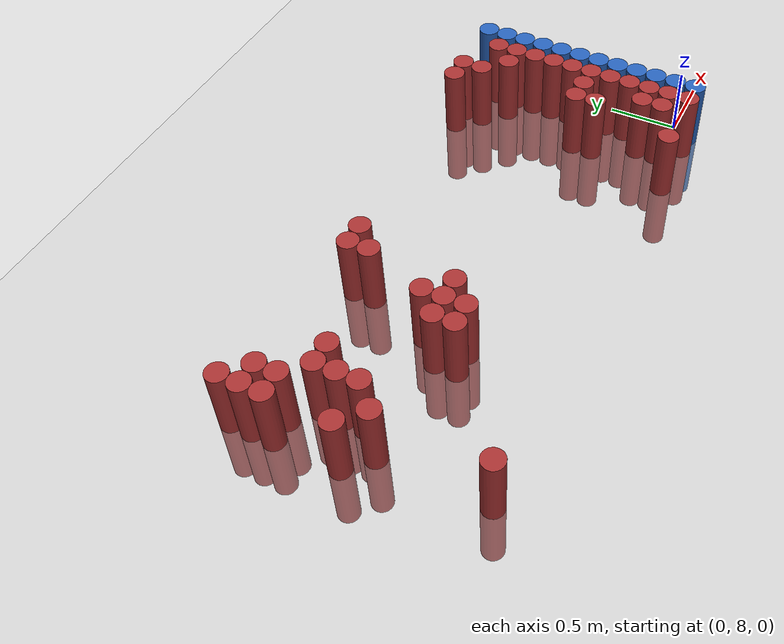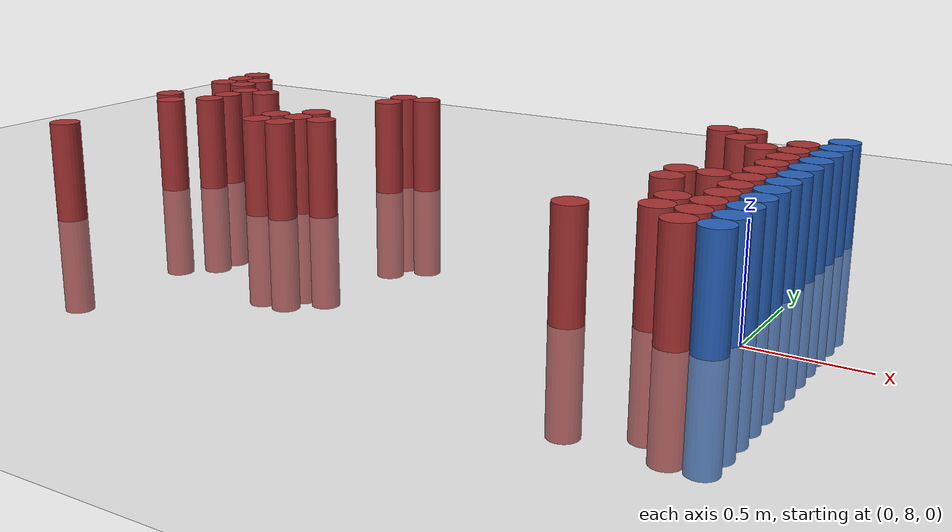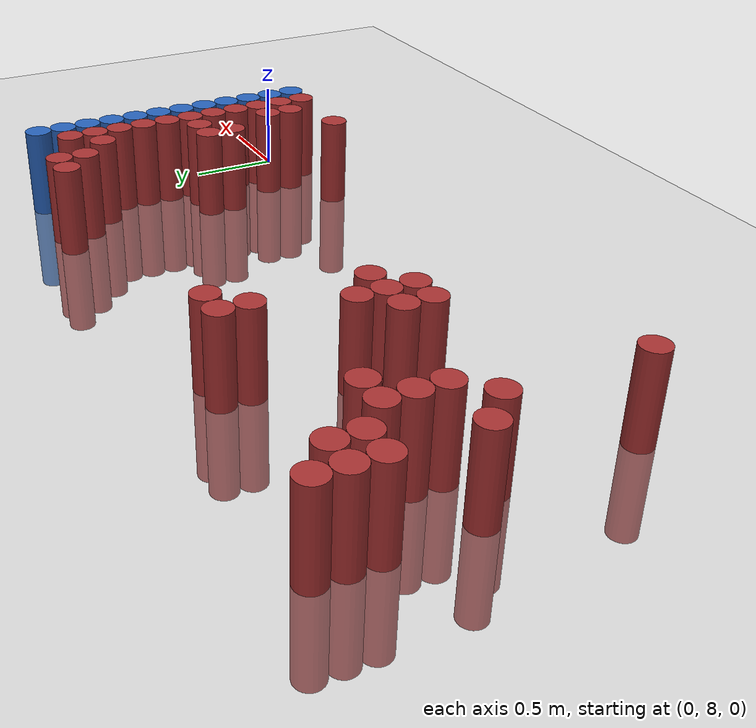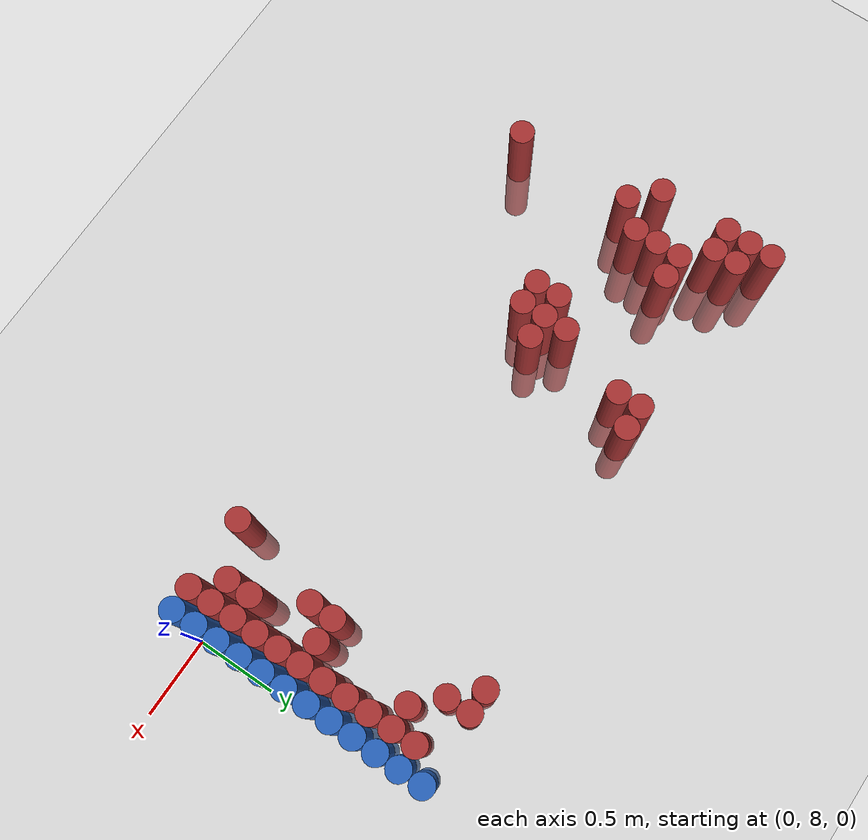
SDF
<sdf version="1.6">
 <world name="default">
  <model name="ground_plane">
   <static>1</static>
   <link name="link">
    <collision name="collision">
     <geometry><plane><normal>0 0 1</normal><size>100 100</size></plane></geometry>
     <surface><friction><ode><mu>100</mu><mu2>50</mu2></ode></friction></surface>
    </collision>
    <visual name="visual">
     <cast_shadows>0</cast_shadows>
     <geometry><plane><normal>0 0 1</normal><size>100 100</size></plane></geometry>
     <material>
      <script><uri>file://media/materials/scripts/gazebo.material</uri><name>Gazebo/Grey</name></script>
     </material>
    </visual>
   </link>
  </model>
  <model name="unit_cylinder_156">
   <static>1</static>
   <pose>-3.675000 8.775000 0.000000 0.000000 0.000000 0.000000</pose>
   <link name="link">
    <inertial>
     <mass>1</mass>
     <inertia><ixx>0.145833</ixx><ixy>0</ixy><ixz>0</ixz><iyy>0.145833</iyy><iyz>0</iyz><izz>0.125</izz></inertia>
    </inertial>
    <collision name="collision">
     <geometry><cylinder><radius>0.075000</radius><length>1</length></cylinder></geometry>
    </collision>
    <visual name="visual">
     <geometry><cylinder><radius>0.075000</radius><length>1</length></cylinder></geometry>
     <material>
      <ambient>0.648000 0.192000 0.192000 1</ambient>
      <diffuse>0.648000 0.192000 0.192000 1</diffuse>
     </material>
     <material>
      <script><name>Gazebo/Grey</name><uri>file://media/materials/scripts/gazebo.material</uri></script>
     </material>
    </visual>
   </link>
  </model>
  <model name="unit_cylinder_157">
   <static>1</static>
   <pose>-3.675000 9.225000 0.000000 0.000000 0.000000 0.000000</pose>
   <link name="link">
    <inertial>
     <mass>1</mass>
     <inertia><ixx>0.145833</ixx><ixy>0</ixy><ixz>0</ixz><iyy>0.145833</iyy><iyz>0</iyz><izz>0.125</izz></inertia>
    </inertial>
    <collision name="collision">
     <geometry><cylinder><radius>0.075000</radius><length>1</length></cylinder></geometry>
    </collision>
    <visual name="visual">
     <geometry><cylinder><radius>0.075000</radius><length>1</length></cylinder></geometry>
     <material>
      <ambient>0.648000 0.192000 0.192000 1</ambient>
      <diffuse>0.648000 0.192000 0.192000 1</diffuse>
     </material>
     <material>
      <script><name>Gazebo/Grey</name><uri>file://media/materials/scripts/gazebo.material</uri></script>
     </material>
    </visual>
   </link>
  </model>
  <model name="unit_cylinder_158">
   <static>1</static>
   <pose>-3.675000 9.375000 0.000000 0.000000 0.000000 0.000000</pose>
   <link name="link">
    <inertial>
     <mass>1</mass>
     <inertia><ixx>0.145833</ixx><ixy>0</ixy><ixz>0</ixz><iyy>0.145833</iyy><iyz>0</iyz><izz>0.125</izz></inertia>
    </inertial>
    <collision name="collision">
     <geometry><cylinder><radius>0.075000</radius><length>1</length></cylinder></geometry>
    </collision>
    <visual name="visual">
     <geometry><cylinder><radius>0.075000</radius><length>1</length></cylinder></geometry>
     <material>
      <ambient>0.648000 0.192000 0.192000 1</ambient>
      <diffuse>0.648000 0.192000 0.192000 1</diffuse>
     </material>
     <material>
      <script><name>Gazebo/Grey</name><uri>file://media/materials/scripts/gazebo.material</uri></script>
     </material>
    </visual>
   </link>
  </model>
  <model name="unit_cylinder_159">
   <static>1</static>
   <pose>-3.675000 9.525000 0.000000 0.000000 0.000000 0.000000</pose>
   <link name="link">
    <inertial>
     <mass>1</mass>
     <inertia><ixx>0.145833</ixx><ixy>0</ixy><ixz>0</ixz><iyy>0.145833</iyy><iyz>0</iyz><izz>0.125</izz></inertia>
    </inertial>
    <collision name="collision">
     <geometry><cylinder><radius>0.075000</radius><length>1</length></cylinder></geometry>
    </collision>
    <visual name="visual">
     <geometry><cylinder><radius>0.075000</radius><length>1</length></cylinder></geometry>
     <material>
      <ambient>0.648000 0.192000 0.192000 1</ambient>
      <diffuse>0.648000 0.192000 0.192000 1</diffuse>
     </material>
     <material>
      <script><name>Gazebo/Grey</name><uri>file://media/materials/scripts/gazebo.material</uri></script>
     </material>
    </visual>
   </link>
  </model>
  <model name="unit_cylinder_161">
   <static>1</static>
   <pose>-3.525000 7.875000 0.000000 0.000000 0.000000 0.000000</pose>
   <link name="link">
    <inertial>
     <mass>1</mass>
     <inertia><ixx>0.145833</ixx><ixy>0</ixy><ixz>0</ixz><iyy>0.145833</iyy><iyz>0</iyz><izz>0.125</izz></inertia>
    </inertial>
    <collision name="collision">
     <geometry><cylinder><radius>0.075000</radius><length>1</length></cylinder></geometry>
    </collision>
    <visual name="visual">
     <geometry><cylinder><radius>0.075000</radius><length>1</length></cylinder></geometry>
     <material>
      <ambient>0.648000 0.192000 0.192000 1</ambient>
      <diffuse>0.648000 0.192000 0.192000 1</diffuse>
     </material>
     <material>
      <script><name>Gazebo/Grey</name><uri>file://media/materials/scripts/gazebo.material</uri></script>
     </material>
    </visual>
   </link>
  </model>
  <model name="unit_cylinder_162">
   <static>1</static>
   <pose>-3.525000 8.625000 0.000000 0.000000 0.000000 0.000000</pose>
   <link name="link">
    <inertial>
     <mass>1</mass>
     <inertia><ixx>0.145833</ixx><ixy>0</ixy><ixz>0</ixz><iyy>0.145833</iyy><iyz>0</iyz><izz>0.125</izz></inertia>
    </inertial>
    <collision name="collision">
     <geometry><cylinder><radius>0.075000</radius><length>1</length></cylinder></geometry>
    </collision>
    <visual name="visual">
     <geometry><cylinder><radius>0.075000</radius><length>1</length></cylinder></geometry>
     <material>
      <ambient>0.648000 0.192000 0.192000 1</ambient>
      <diffuse>0.648000 0.192000 0.192000 1</diffuse>
     </material>
     <material>
      <script><name>Gazebo/Grey</name><uri>file://media/materials/scripts/gazebo.material</uri></script>
     </material>
    </visual>
   </link>
  </model>
  <model name="unit_cylinder_163">
   <static>1</static>
   <pose>-3.525000 9.225000 0.000000 0.000000 0.000000 0.000000</pose>
   <link name="link">
    <inertial>
     <mass>1</mass>
     <inertia><ixx>0.145833</ixx><ixy>0</ixy><ixz>0</ixz><iyy>0.145833</iyy><iyz>0</iyz><izz>0.125</izz></inertia>
    </inertial>
    <collision name="collision">
     <geometry><cylinder><radius>0.075000</radius><length>1</length></cylinder></geometry>
    </collision>
    <visual name="visual">
     <geometry><cylinder><radius>0.075000</radius><length>1</length></cylinder></geometry>
     <material>
      <ambient>0.648000 0.192000 0.192000 1</ambient>
      <diffuse>0.648000 0.192000 0.192000 1</diffuse>
     </material>
     <material>
      <script><name>Gazebo/Grey</name><uri>file://media/materials/scripts/gazebo.material</uri></script>
     </material>
    </visual>
   </link>
  </model>
  <model name="unit_cylinder_164">
   <static>1</static>
   <pose>-3.525000 9.375000 0.000000 0.000000 0.000000 0.000000</pose>
   <link name="link">
    <inertial>
     <mass>1</mass>
     <inertia><ixx>0.145833</ixx><ixy>0</ixy><ixz>0</ixz><iyy>0.145833</iyy><iyz>0</iyz><izz>0.125</izz></inertia>
    </inertial>
    <collision name="collision">
     <geometry><cylinder><radius>0.075000</radius><length>1</length></cylinder></geometry>
    </collision>
    <visual name="visual">
     <geometry><cylinder><radius>0.075000</radius><length>1</length></cylinder></geometry>
     <material>
      <ambient>0.648000 0.192000 0.192000 1</ambient>
      <diffuse>0.648000 0.192000 0.192000 1</diffuse>
     </material>
     <material>
      <script><name>Gazebo/Grey</name><uri>file://media/materials/scripts/gazebo.material</uri></script>
     </material>
    </visual>
   </link>
  </model>
  <model name="unit_cylinder_166">
   <static>1</static>
   <pose>-3.375000 8.775000 0.000000 0.000000 0.000000 0.000000</pose>
   <link name="link">
    <inertial>
     <mass>1</mass>
     <inertia><ixx>0.145833</ixx><ixy>0</ixy><ixz>0</ixz><iyy>0.145833</iyy><iyz>0</iyz><izz>0.125</izz></inertia>
    </inertial>
    <collision name="collision">
     <geometry><cylinder><radius>0.075000</radius><length>1</length></cylinder></geometry>
    </collision>
    <visual name="visual">
     <geometry><cylinder><radius>0.075000</radius><length>1</length></cylinder></geometry>
     <material>
      <ambient>0.648000 0.192000 0.192000 1</ambient>
      <diffuse>0.648000 0.192000 0.192000 1</diffuse>
     </material>
     <material>
      <script><name>Gazebo/Grey</name><uri>file://media/materials/scripts/gazebo.material</uri></script>
     </material>
    </visual>
   </link>
  </model>
  <model name="unit_cylinder_167">
   <static>1</static>
   <pose>-3.375000 8.925000 0.000000 0.000000 0.000000 0.000000</pose>
   <link name="link">
    <inertial>
     <mass>1</mass>
     <inertia><ixx>0.145833</ixx><ixy>0</ixy><ixz>0</ixz><iyy>0.145833</iyy><iyz>0</iyz><izz>0.125</izz></inertia>
    </inertial>
    <collision name="collision">
     <geometry><cylinder><radius>0.075000</radius><length>1</length></cylinder></geometry>
    </collision>
    <visual name="visual">
     <geometry><cylinder><radius>0.075000</radius><length>1</length></cylinder></geometry>
     <material>
      <ambient>0.648000 0.192000 0.192000 1</ambient>
      <diffuse>0.648000 0.192000 0.192000 1</diffuse>
     </material>
     <material>
      <script><name>Gazebo/Grey</name><uri>file://media/materials/scripts/gazebo.material</uri></script>
     </material>
    </visual>
   </link>
  </model>
  <model name="unit_cylinder_168">
   <static>1</static>
   <pose>-3.375000 9.075000 0.000000 0.000000 0.000000 0.000000</pose>
   <link name="link">
    <inertial>
     <mass>1</mass>
     <inertia><ixx>0.145833</ixx><ixy>0</ixy><ixz>0</ixz><iyy>0.145833</iyy><iyz>0</iyz><izz>0.125</izz></inertia>
    </inertial>
    <collision name="collision">
     <geometry><cylinder><radius>0.075000</radius><length>1</length></cylinder></geometry>
    </collision>
    <visual name="visual">
     <geometry><cylinder><radius>0.075000</radius><length>1</length></cylinder></geometry>
     <material>
      <ambient>0.648000 0.192000 0.192000 1</ambient>
      <diffuse>0.648000 0.192000 0.192000 1</diffuse>
     </material>
     <material>
      <script><name>Gazebo/Grey</name><uri>file://media/materials/scripts/gazebo.material</uri></script>
     </material>
    </visual>
   </link>
  </model>
  <model name="unit_cylinder_171">
   <static>1</static>
   <pose>-3.225000 9.075000 0.000000 0.000000 0.000000 0.000000</pose>
   <link name="link">
    <inertial>
     <mass>1</mass>
     <inertia><ixx>0.145833</ixx><ixy>0</ixy><ixz>0</ixz><iyy>0.145833</iyy><iyz>0</iyz><izz>0.125</izz></inertia>
    </inertial>
    <collision name="collision">
     <geometry><cylinder><radius>0.075000</radius><length>1</length></cylinder></geometry>
    </collision>
    <visual name="visual">
     <geometry><cylinder><radius>0.075000</radius><length>1</length></cylinder></geometry>
     <material>
      <ambient>0.648000 0.192000 0.192000 1</ambient>
      <diffuse>0.648000 0.192000 0.192000 1</diffuse>
     </material>
     <material>
      <script><name>Gazebo/Grey</name><uri>file://media/materials/scripts/gazebo.material</uri></script>
     </material>
    </visual>
   </link>
  </model>
  <model name="unit_cylinder_174">
   <static>1</static>
   <pose>-2.775000 8.475000 0.000000 0.000000 0.000000 0.000000</pose>
   <link name="link">
    <inertial>
     <mass>1</mass>
     <inertia><ixx>0.145833</ixx><ixy>0</ixy><ixz>0</ixz><iyy>0.145833</iyy><iyz>0</iyz><izz>0.125</izz></inertia>
    </inertial>
    <collision name="collision">
     <geometry><cylinder><radius>0.075000</radius><length>1</length></cylinder></geometry>
    </collision>
    <visual name="visual">
     <geometry><cylinder><radius>0.075000</radius><length>1</length></cylinder></geometry>
     <material>
      <ambient>0.648000 0.192000 0.192000 1</ambient>
      <diffuse>0.648000 0.192000 0.192000 1</diffuse>
     </material>
     <material>
      <script><name>Gazebo/Grey</name><uri>file://media/materials/scripts/gazebo.material</uri></script>
     </material>
    </visual>
   </link>
  </model>
  <model name="unit_cylinder_175">
   <static>1</static>
   <pose>-2.775000 8.625000 0.000000 0.000000 0.000000 0.000000</pose>
   <link name="link">
    <inertial>
     <mass>1</mass>
     <inertia><ixx>0.145833</ixx><ixy>0</ixy><ixz>0</ixz><iyy>0.145833</iyy><iyz>0</iyz><izz>0.125</izz></inertia>
    </inertial>
    <collision name="collision">
     <geometry><cylinder><radius>0.075000</radius><length>1</length></cylinder></geometry>
    </collision>
    <visual name="visual">
     <geometry><cylinder><radius>0.075000</radius><length>1</length></cylinder></geometry>
     <material>
      <ambient>0.648000 0.192000 0.192000 1</ambient>
      <diffuse>0.648000 0.192000 0.192000 1</diffuse>
     </material>
     <material>
      <script><name>Gazebo/Grey</name><uri>file://media/materials/scripts/gazebo.material</uri></script>
     </material>
    </visual>
   </link>
  </model>
  <model name="unit_cylinder_181">
   <static>1</static>
   <pose>-2.625000 8.475000 0.000000 0.000000 0.000000 0.000000</pose>
   <link name="link">
    <inertial>
     <mass>1</mass>
     <inertia><ixx>0.145833</ixx><ixy>0</ixy><ixz>0</ixz><iyy>0.145833</iyy><iyz>0</iyz><izz>0.125</izz></inertia>
    </inertial>
    <collision name="collision">
     <geometry><cylinder><radius>0.075000</radius><length>1</length></cylinder></geometry>
    </collision>
    <visual name="visual">
     <geometry><cylinder><radius>0.075000</radius><length>1</length></cylinder></geometry>
     <material>
      <ambient>0.648000 0.192000 0.192000 1</ambient>
      <diffuse>0.648000 0.192000 0.192000 1</diffuse>
     </material>
     <material>
      <script><name>Gazebo/Grey</name><uri>file://media/materials/scripts/gazebo.material</uri></script>
     </material>
    </visual>
   </link>
  </model>
  <model name="unit_cylinder_182">
   <static>1</static>
   <pose>-2.625000 8.625000 0.000000 0.000000 0.000000 0.000000</pose>
   <link name="link">
    <inertial>
     <mass>1</mass>
     <inertia><ixx>0.145833</ixx><ixy>0</ixy><ixz>0</ixz><iyy>0.145833</iyy><iyz>0</iyz><izz>0.125</izz></inertia>
    </inertial>
    <collision name="collision">
     <geometry><cylinder><radius>0.075000</radius><length>1</length></cylinder></geometry>
    </collision>
    <visual name="visual">
     <geometry><cylinder><radius>0.075000</radius><length>1</length></cylinder></geometry>
     <material>
      <ambient>0.648000 0.192000 0.192000 1</ambient>
      <diffuse>0.648000 0.192000 0.192000 1</diffuse>
     </material>
     <material>
      <script><name>Gazebo/Grey</name><uri>file://media/materials/scripts/gazebo.material</uri></script>
     </material>
    </visual>
   </link>
  </model>
  <model name="unit_cylinder_183">
   <static>1</static>
   <pose>-2.625000 8.775000 0.000000 0.000000 0.000000 0.000000</pose>
   <link name="link">
    <inertial>
     <mass>1</mass>
     <inertia><ixx>0.145833</ixx><ixy>0</ixy><ixz>0</ixz><iyy>0.145833</iyy><iyz>0</iyz><izz>0.125</izz></inertia>
    </inertial>
    <collision name="collision">
     <geometry><cylinder><radius>0.075000</radius><length>1</length></cylinder></geometry>
    </collision>
    <visual name="visual">
     <geometry><cylinder><radius>0.075000</radius><length>1</length></cylinder></geometry>
     <material>
      <ambient>0.648000 0.192000 0.192000 1</ambient>
      <diffuse>0.648000 0.192000 0.192000 1</diffuse>
     </material>
     <material>
      <script><name>Gazebo/Grey</name><uri>file://media/materials/scripts/gazebo.material</uri></script>
     </material>
    </visual>
   </link>
  </model>
  <model name="unit_cylinder_188">
   <static>1</static>
   <pose>-2.475000 8.625000 0.000000 0.000000 0.000000 0.000000</pose>
   <link name="link">
    <inertial>
     <mass>1</mass>
     <inertia><ixx>0.145833</ixx><ixy>0</ixy><ixz>0</ixz><iyy>0.145833</iyy><iyz>0</iyz><izz>0.125</izz></inertia>
    </inertial>
    <collision name="collision">
     <geometry><cylinder><radius>0.075000</radius><length>1</length></cylinder></geometry>
    </collision>
    <visual name="visual">
     <geometry><cylinder><radius>0.075000</radius><length>1</length></cylinder></geometry>
     <material>
      <ambient>0.648000 0.192000 0.192000 1</ambient>
      <diffuse>0.648000 0.192000 0.192000 1</diffuse>
     </material>
     <material>
      <script><name>Gazebo/Grey</name><uri>file://media/materials/scripts/gazebo.material</uri></script>
     </material>
    </visual>
   </link>
  </model>
  <model name="unit_cylinder_189">
   <static>1</static>
   <pose>-2.475000 9.225000 0.000000 0.000000 0.000000 0.000000</pose>
   <link name="link">
    <inertial>
     <mass>1</mass>
     <inertia><ixx>0.145833</ixx><ixy>0</ixy><ixz>0</ixz><iyy>0.145833</iyy><iyz>0</iyz><izz>0.125</izz></inertia>
    </inertial>
    <collision name="collision">
     <geometry><cylinder><radius>0.075000</radius><length>1</length></cylinder></geometry>
    </collision>
    <visual name="visual">
     <geometry><cylinder><radius>0.075000</radius><length>1</length></cylinder></geometry>
     <material>
      <ambient>0.648000 0.192000 0.192000 1</ambient>
      <diffuse>0.648000 0.192000 0.192000 1</diffuse>
     </material>
     <material>
      <script><name>Gazebo/Grey</name><uri>file://media/materials/scripts/gazebo.material</uri></script>
     </material>
    </visual>
   </link>
  </model>
  <model name="unit_cylinder_190">
   <static>1</static>
   <pose>-2.475000 9.375000 0.000000 0.000000 0.000000 0.000000</pose>
   <link name="link">
    <inertial>
     <mass>1</mass>
     <inertia><ixx>0.145833</ixx><ixy>0</ixy><ixz>0</ixz><iyy>0.145833</iyy><iyz>0</iyz><izz>0.125</izz></inertia>
    </inertial>
    <collision name="collision">
     <geometry><cylinder><radius>0.075000</radius><length>1</length></cylinder></geometry>
    </collision>
    <visual name="visual">
     <geometry><cylinder><radius>0.075000</radius><length>1</length></cylinder></geometry>
     <material>
      <ambient>0.648000 0.192000 0.192000 1</ambient>
      <diffuse>0.648000 0.192000 0.192000 1</diffuse>
     </material>
     <material>
      <script><name>Gazebo/Grey</name><uri>file://media/materials/scripts/gazebo.material</uri></script>
     </material>
    </visual>
   </link>
  </model>
  <model name="unit_cylinder_197">
   <static>1</static>
   <pose>-2.325000 9.375000 0.000000 0.000000 0.000000 0.000000</pose>
   <link name="link">
    <inertial>
     <mass>1</mass>
     <inertia><ixx>0.145833</ixx><ixy>0</ixy><ixz>0</ixz><iyy>0.145833</iyy><iyz>0</iyz><izz>0.125</izz></inertia>
    </inertial>
    <collision name="collision">
     <geometry><cylinder><radius>0.075000</radius><length>1</length></cylinder></geometry>
    </collision>
    <visual name="visual">
     <geometry><cylinder><radius>0.075000</radius><length>1</length></cylinder></geometry>
     <material>
      <ambient>0.648000 0.192000 0.192000 1</ambient>
      <diffuse>0.648000 0.192000 0.192000 1</diffuse>
     </material>
     <material>
      <script><name>Gazebo/Grey</name><uri>file://media/materials/scripts/gazebo.material</uri></script>
     </material>
    </visual>
   </link>
  </model>
  <model name="unit_cylinder_213">
   <static>1</static>
   <pose>-0.675000 7.875000 0.000000 0.000000 0.000000 0.000000</pose>
   <link name="link">
    <inertial>
     <mass>1</mass>
     <inertia><ixx>0.145833</ixx><ixy>0</ixy><ixz>0</ixz><iyy>0.145833</iyy><iyz>0</iyz><izz>0.125</izz></inertia>
    </inertial>
    <collision name="collision">
     <geometry><cylinder><radius>0.075000</radius><length>1</length></cylinder></geometry>
    </collision>
    <visual name="visual">
     <geometry><cylinder><radius>0.075000</radius><length>1</length></cylinder></geometry>
     <material>
      <ambient>0.648000 0.192000 0.192000 1</ambient>
      <diffuse>0.648000 0.192000 0.192000 1</diffuse>
     </material>
     <material>
      <script><name>Gazebo/Grey</name><uri>file://media/materials/scripts/gazebo.material</uri></script>
     </material>
    </visual>
   </link>
  </model>
  <model name="unit_cylinder_214">
   <static>1</static>
   <pose>-0.675000 9.525000 0.000000 0.000000 0.000000 0.000000</pose>
   <link name="link">
    <inertial>
     <mass>1</mass>
     <inertia><ixx>0.145833</ixx><ixy>0</ixy><ixz>0</ixz><iyy>0.145833</iyy><iyz>0</iyz><izz>0.125</izz></inertia>
    </inertial>
    <collision name="collision">
     <geometry><cylinder><radius>0.075000</radius><length>1</length></cylinder></geometry>
    </collision>
    <visual name="visual">
     <geometry><cylinder><radius>0.075000</radius><length>1</length></cylinder></geometry>
     <material>
      <ambient>0.648000 0.192000 0.192000 1</ambient>
      <diffuse>0.648000 0.192000 0.192000 1</diffuse>
     </material>
     <material>
      <script><name>Gazebo/Grey</name><uri>file://media/materials/scripts/gazebo.material</uri></script>
     </material>
    </visual>
   </link>
  </model>
  <model name="unit_cylinder_217">
   <static>1</static>
   <pose>-0.525000 8.475000 0.000000 0.000000 0.000000 0.000000</pose>
   <link name="link">
    <inertial>
     <mass>1</mass>
     <inertia><ixx>0.145833</ixx><ixy>0</ixy><ixz>0</ixz><iyy>0.145833</iyy><iyz>0</iyz><izz>0.125</izz></inertia>
    </inertial>
    <collision name="collision">
     <geometry><cylinder><radius>0.075000</radius><length>1</length></cylinder></geometry>
    </collision>
    <visual name="visual">
     <geometry><cylinder><radius>0.075000</radius><length>1</length></cylinder></geometry>
     <material>
      <ambient>0.648000 0.192000 0.192000 1</ambient>
      <diffuse>0.648000 0.192000 0.192000 1</diffuse>
     </material>
     <material>
      <script><name>Gazebo/Grey</name><uri>file://media/materials/scripts/gazebo.material</uri></script>
     </material>
    </visual>
   </link>
  </model>
  <model name="unit_cylinder_218">
   <static>1</static>
   <pose>-0.525000 8.625000 0.000000 0.000000 0.000000 0.000000</pose>
   <link name="link">
    <inertial>
     <mass>1</mass>
     <inertia><ixx>0.145833</ixx><ixy>0</ixy><ixz>0</ixz><iyy>0.145833</iyy><iyz>0</iyz><izz>0.125</izz></inertia>
    </inertial>
    <collision name="collision">
     <geometry><cylinder><radius>0.075000</radius><length>1</length></cylinder></geometry>
    </collision>
    <visual name="visual">
     <geometry><cylinder><radius>0.075000</radius><length>1</length></cylinder></geometry>
     <material>
      <ambient>0.648000 0.192000 0.192000 1</ambient>
      <diffuse>0.648000 0.192000 0.192000 1</diffuse>
     </material>
     <material>
      <script><name>Gazebo/Grey</name><uri>file://media/materials/scripts/gazebo.material</uri></script>
     </material>
    </visual>
   </link>
  </model>
  <model name="unit_cylinder_219">
   <static>1</static>
   <pose>-0.525000 9.375000 0.000000 0.000000 0.000000 0.000000</pose>
   <link name="link">
    <inertial>
     <mass>1</mass>
     <inertia><ixx>0.145833</ixx><ixy>0</ixy><ixz>0</ixz><iyy>0.145833</iyy><iyz>0</iyz><izz>0.125</izz></inertia>
    </inertial>
    <collision name="collision">
     <geometry><cylinder><radius>0.075000</radius><length>1</length></cylinder></geometry>
    </collision>
    <visual name="visual">
     <geometry><cylinder><radius>0.075000</radius><length>1</length></cylinder></geometry>
     <material>
      <ambient>0.648000 0.192000 0.192000 1</ambient>
      <diffuse>0.648000 0.192000 0.192000 1</diffuse>
     </material>
     <material>
      <script><name>Gazebo/Grey</name><uri>file://media/materials/scripts/gazebo.material</uri></script>
     </material>
    </visual>
   </link>
  </model>
  <model name="unit_cylinder_220">
   <static>1</static>
   <pose>-0.525000 9.525000 0.000000 0.000000 0.000000 0.000000</pose>
   <link name="link">
    <inertial>
     <mass>1</mass>
     <inertia><ixx>0.145833</ixx><ixy>0</ixy><ixz>0</ixz><iyy>0.145833</iyy><iyz>0</iyz><izz>0.125</izz></inertia>
    </inertial>
    <collision name="collision">
     <geometry><cylinder><radius>0.075000</radius><length>1</length></cylinder></geometry>
    </collision>
    <visual name="visual">
     <geometry><cylinder><radius>0.075000</radius><length>1</length></cylinder></geometry>
     <material>
      <ambient>0.648000 0.192000 0.192000 1</ambient>
      <diffuse>0.648000 0.192000 0.192000 1</diffuse>
     </material>
     <material>
      <script><name>Gazebo/Grey</name><uri>file://media/materials/scripts/gazebo.material</uri></script>
     </material>
    </visual>
   </link>
  </model>
  <model name="unit_cylinder_221">
   <static>1</static>
   <pose>-0.375000 8.025000 0.000000 0.000000 0.000000 0.000000</pose>
   <link name="link">
    <inertial>
     <mass>1</mass>
     <inertia><ixx>0.145833</ixx><ixy>0</ixy><ixz>0</ixz><iyy>0.145833</iyy><iyz>0</iyz><izz>0.125</izz></inertia>
    </inertial>
    <collision name="collision">
     <geometry><cylinder><radius>0.075000</radius><length>1</length></cylinder></geometry>
    </collision>
    <visual name="visual">
     <geometry><cylinder><radius>0.075000</radius><length>1</length></cylinder></geometry>
     <material>
      <ambient>0.648000 0.192000 0.192000 1</ambient>
      <diffuse>0.648000 0.192000 0.192000 1</diffuse>
     </material>
     <material>
      <script><name>Gazebo/Grey</name><uri>file://media/materials/scripts/gazebo.material</uri></script>
     </material>
    </visual>
   </link>
  </model>
  <model name="unit_cylinder_222">
   <static>1</static>
   <pose>-0.375000 8.175000 0.000000 0.000000 0.000000 0.000000</pose>
   <link name="link">
    <inertial>
     <mass>1</mass>
     <inertia><ixx>0.145833</ixx><ixy>0</ixy><ixz>0</ixz><iyy>0.145833</iyy><iyz>0</iyz><izz>0.125</izz></inertia>
    </inertial>
    <collision name="collision">
     <geometry><cylinder><radius>0.075000</radius><length>1</length></cylinder></geometry>
    </collision>
    <visual name="visual">
     <geometry><cylinder><radius>0.075000</radius><length>1</length></cylinder></geometry>
     <material>
      <ambient>0.648000 0.192000 0.192000 1</ambient>
      <diffuse>0.648000 0.192000 0.192000 1</diffuse>
     </material>
     <material>
      <script><name>Gazebo/Grey</name><uri>file://media/materials/scripts/gazebo.material</uri></script>
     </material>
    </visual>
   </link>
  </model>
  <model name="unit_cylinder_223">
   <static>1</static>
   <pose>-0.375000 8.625000 0.000000 0.000000 0.000000 0.000000</pose>
   <link name="link">
    <inertial>
     <mass>1</mass>
     <inertia><ixx>0.145833</ixx><ixy>0</ixy><ixz>0</ixz><iyy>0.145833</iyy><iyz>0</iyz><izz>0.125</izz></inertia>
    </inertial>
    <collision name="collision">
     <geometry><cylinder><radius>0.075000</radius><length>1</length></cylinder></geometry>
    </collision>
    <visual name="visual">
     <geometry><cylinder><radius>0.075000</radius><length>1</length></cylinder></geometry>
     <material>
      <ambient>0.648000 0.192000 0.192000 1</ambient>
      <diffuse>0.648000 0.192000 0.192000 1</diffuse>
     </material>
     <material>
      <script><name>Gazebo/Grey</name><uri>file://media/materials/scripts/gazebo.material</uri></script>
     </material>
    </visual>
   </link>
  </model>
  <model name="unit_cylinder_224">
   <static>1</static>
   <pose>-0.375000 9.225000 0.000000 0.000000 0.000000 0.000000</pose>
   <link name="link">
    <inertial>
     <mass>1</mass>
     <inertia><ixx>0.145833</ixx><ixy>0</ixy><ixz>0</ixz><iyy>0.145833</iyy><iyz>0</iyz><izz>0.125</izz></inertia>
    </inertial>
    <collision name="collision">
     <geometry><cylinder><radius>0.075000</radius><length>1</length></cylinder></geometry>
    </collision>
    <visual name="visual">
     <geometry><cylinder><radius>0.075000</radius><length>1</length></cylinder></geometry>
     <material>
      <ambient>0.648000 0.192000 0.192000 1</ambient>
      <diffuse>0.648000 0.192000 0.192000 1</diffuse>
     </material>
     <material>
      <script><name>Gazebo/Grey</name><uri>file://media/materials/scripts/gazebo.material</uri></script>
     </material>
    </visual>
   </link>
  </model>
  <model name="unit_cylinder_229">
   <static>1</static>
   <pose>-0.225000 7.875000 0.000000 0.000000 0.000000 0.000000</pose>
   <link name="link">
    <inertial>
     <mass>1</mass>
     <inertia><ixx>0.145833</ixx><ixy>0</ixy><ixz>0</ixz><iyy>0.145833</iyy><iyz>0</iyz><izz>0.125</izz></inertia>
    </inertial>
    <collision name="collision">
     <geometry><cylinder><radius>0.075000</radius><length>1</length></cylinder></geometry>
    </collision>
    <visual name="visual">
     <geometry><cylinder><radius>0.075000</radius><length>1</length></cylinder></geometry>
     <material>
      <ambient>0.648000 0.192000 0.192000 1</ambient>
      <diffuse>0.648000 0.192000 0.192000 1</diffuse>
     </material>
     <material>
      <script><name>Gazebo/Grey</name><uri>file://media/materials/scripts/gazebo.material</uri></script>
     </material>
    </visual>
   </link>
  </model>
  <model name="unit_cylinder_230">
   <static>1</static>
   <pose>-0.225000 8.025000 0.000000 0.000000 0.000000 0.000000</pose>
   <link name="link">
    <inertial>
     <mass>1</mass>
     <inertia><ixx>0.145833</ixx><ixy>0</ixy><ixz>0</ixz><iyy>0.145833</iyy><iyz>0</iyz><izz>0.125</izz></inertia>
    </inertial>
    <collision name="collision">
     <geometry><cylinder><radius>0.075000</radius><length>1</length></cylinder></geometry>
    </collision>
    <visual name="visual">
     <geometry><cylinder><radius>0.075000</radius><length>1</length></cylinder></geometry>
     <material>
      <ambient>0.648000 0.192000 0.192000 1</ambient>
      <diffuse>0.648000 0.192000 0.192000 1</diffuse>
     </material>
     <material>
      <script><name>Gazebo/Grey</name><uri>file://media/materials/scripts/gazebo.material</uri></script>
     </material>
    </visual>
   </link>
  </model>
  <model name="unit_cylinder_231">
   <static>1</static>
   <pose>-0.225000 8.175000 0.000000 0.000000 0.000000 0.000000</pose>
   <link name="link">
    <inertial>
     <mass>1</mass>
     <inertia><ixx>0.145833</ixx><ixy>0</ixy><ixz>0</ixz><iyy>0.145833</iyy><iyz>0</iyz><izz>0.125</izz></inertia>
    </inertial>
    <collision name="collision">
     <geometry><cylinder><radius>0.075000</radius><length>1</length></cylinder></geometry>
    </collision>
    <visual name="visual">
     <geometry><cylinder><radius>0.075000</radius><length>1</length></cylinder></geometry>
     <material>
      <ambient>0.648000 0.192000 0.192000 1</ambient>
      <diffuse>0.648000 0.192000 0.192000 1</diffuse>
     </material>
     <material>
      <script><name>Gazebo/Grey</name><uri>file://media/materials/scripts/gazebo.material</uri></script>
     </material>
    </visual>
   </link>
  </model>
  <model name="unit_cylinder_232">
   <static>1</static>
   <pose>-0.225000 8.325000 0.000000 0.000000 0.000000 0.000000</pose>
   <link name="link">
    <inertial>
     <mass>1</mass>
     <inertia><ixx>0.145833</ixx><ixy>0</ixy><ixz>0</ixz><iyy>0.145833</iyy><iyz>0</iyz><izz>0.125</izz></inertia>
    </inertial>
    <collision name="collision">
     <geometry><cylinder><radius>0.075000</radius><length>1</length></cylinder></geometry>
    </collision>
    <visual name="visual">
     <geometry><cylinder><radius>0.075000</radius><length>1</length></cylinder></geometry>
     <material>
      <ambient>0.648000 0.192000 0.192000 1</ambient>
      <diffuse>0.648000 0.192000 0.192000 1</diffuse>
     </material>
     <material>
      <script><name>Gazebo/Grey</name><uri>file://media/materials/scripts/gazebo.material</uri></script>
     </material>
    </visual>
   </link>
  </model>
  <model name="unit_cylinder_233">
   <static>1</static>
   <pose>-0.225000 8.475000 0.000000 0.000000 0.000000 0.000000</pose>
   <link name="link">
    <inertial>
     <mass>1</mass>
     <inertia><ixx>0.145833</ixx><ixy>0</ixy><ixz>0</ixz><iyy>0.145833</iyy><iyz>0</iyz><izz>0.125</izz></inertia>
    </inertial>
    <collision name="collision">
     <geometry><cylinder><radius>0.075000</radius><length>1</length></cylinder></geometry>
    </collision>
    <visual name="visual">
     <geometry><cylinder><radius>0.075000</radius><length>1</length></cylinder></geometry>
     <material>
      <ambient>0.648000 0.192000 0.192000 1</ambient>
      <diffuse>0.648000 0.192000 0.192000 1</diffuse>
     </material>
     <material>
      <script><name>Gazebo/Grey</name><uri>file://media/materials/scripts/gazebo.material</uri></script>
     </material>
    </visual>
   </link>
  </model>
  <model name="unit_cylinder_234">
   <static>1</static>
   <pose>-0.225000 8.625000 0.000000 0.000000 0.000000 0.000000</pose>
   <link name="link">
    <inertial>
     <mass>1</mass>
     <inertia><ixx>0.145833</ixx><ixy>0</ixy><ixz>0</ixz><iyy>0.145833</iyy><iyz>0</iyz><izz>0.125</izz></inertia>
    </inertial>
    <collision name="collision">
     <geometry><cylinder><radius>0.075000</radius><length>1</length></cylinder></geometry>
    </collision>
    <visual name="visual">
     <geometry><cylinder><radius>0.075000</radius><length>1</length></cylinder></geometry>
     <material>
      <ambient>0.648000 0.192000 0.192000 1</ambient>
      <diffuse>0.648000 0.192000 0.192000 1</diffuse>
     </material>
     <material>
      <script><name>Gazebo/Grey</name><uri>file://media/materials/scripts/gazebo.material</uri></script>
     </material>
    </visual>
   </link>
  </model>
  <model name="unit_cylinder_235">
   <static>1</static>
   <pose>-0.225000 8.775000 0.000000 0.000000 0.000000 0.000000</pose>
   <link name="link">
    <inertial>
     <mass>1</mass>
     <inertia><ixx>0.145833</ixx><ixy>0</ixy><ixz>0</ixz><iyy>0.145833</iyy><iyz>0</iyz><izz>0.125</izz></inertia>
    </inertial>
    <collision name="collision">
     <geometry><cylinder><radius>0.075000</radius><length>1</length></cylinder></geometry>
    </collision>
    <visual name="visual">
     <geometry><cylinder><radius>0.075000</radius><length>1</length></cylinder></geometry>
     <material>
      <ambient>0.648000 0.192000 0.192000 1</ambient>
      <diffuse>0.648000 0.192000 0.192000 1</diffuse>
     </material>
     <material>
      <script><name>Gazebo/Grey</name><uri>file://media/materials/scripts/gazebo.material</uri></script>
     </material>
    </visual>
   </link>
  </model>
  <model name="unit_cylinder_236">
   <static>1</static>
   <pose>-0.225000 8.925000 0.000000 0.000000 0.000000 0.000000</pose>
   <link name="link">
    <inertial>
     <mass>1</mass>
     <inertia><ixx>0.145833</ixx><ixy>0</ixy><ixz>0</ixz><iyy>0.145833</iyy><iyz>0</iyz><izz>0.125</izz></inertia>
    </inertial>
    <collision name="collision">
     <geometry><cylinder><radius>0.075000</radius><length>1</length></cylinder></geometry>
    </collision>
    <visual name="visual">
     <geometry><cylinder><radius>0.075000</radius><length>1</length></cylinder></geometry>
     <material>
      <ambient>0.648000 0.192000 0.192000 1</ambient>
      <diffuse>0.648000 0.192000 0.192000 1</diffuse>
     </material>
     <material>
      <script><name>Gazebo/Grey</name><uri>file://media/materials/scripts/gazebo.material</uri></script>
     </material>
    </visual>
   </link>
  </model>
  <model name="unit_cylinder_237">
   <static>1</static>
   <pose>-0.225000 9.075000 0.000000 0.000000 0.000000 0.000000</pose>
   <link name="link">
    <inertial>
     <mass>1</mass>
     <inertia><ixx>0.145833</ixx><ixy>0</ixy><ixz>0</ixz><iyy>0.145833</iyy><iyz>0</iyz><izz>0.125</izz></inertia>
    </inertial>
    <collision name="collision">
     <geometry><cylinder><radius>0.075000</radius><length>1</length></cylinder></geometry>
    </collision>
    <visual name="visual">
     <geometry><cylinder><radius>0.075000</radius><length>1</length></cylinder></geometry>
     <material>
      <ambient>0.648000 0.192000 0.192000 1</ambient>
      <diffuse>0.648000 0.192000 0.192000 1</diffuse>
     </material>
     <material>
      <script><name>Gazebo/Grey</name><uri>file://media/materials/scripts/gazebo.material</uri></script>
     </material>
    </visual>
   </link>
  </model>
  <model name="unit_cylinder_238">
   <static>1</static>
   <pose>-0.225000 9.225000 0.000000 0.000000 0.000000 0.000000</pose>
   <link name="link">
    <inertial>
     <mass>1</mass>
     <inertia><ixx>0.145833</ixx><ixy>0</ixy><ixz>0</ixz><iyy>0.145833</iyy><iyz>0</iyz><izz>0.125</izz></inertia>
    </inertial>
    <collision name="collision">
     <geometry><cylinder><radius>0.075000</radius><length>1</length></cylinder></geometry>
    </collision>
    <visual name="visual">
     <geometry><cylinder><radius>0.075000</radius><length>1</length></cylinder></geometry>
     <material>
      <ambient>0.648000 0.192000 0.192000 1</ambient>
      <diffuse>0.648000 0.192000 0.192000 1</diffuse>
     </material>
     <material>
      <script><name>Gazebo/Grey</name><uri>file://media/materials/scripts/gazebo.material</uri></script>
     </material>
    </visual>
   </link>
  </model>
  <model name="unit_cylinder_239">
   <static>1</static>
   <pose>-0.225000 9.375000 0.000000 0.000000 0.000000 0.000000</pose>
   <link name="link">
    <inertial>
     <mass>1</mass>
     <inertia><ixx>0.145833</ixx><ixy>0</ixy><ixz>0</ixz><iyy>0.145833</iyy><iyz>0</iyz><izz>0.125</izz></inertia>
    </inertial>
    <collision name="collision">
     <geometry><cylinder><radius>0.075000</radius><length>1</length></cylinder></geometry>
    </collision>
    <visual name="visual">
     <geometry><cylinder><radius>0.075000</radius><length>1</length></cylinder></geometry>
     <material>
      <ambient>0.648000 0.192000 0.192000 1</ambient>
      <diffuse>0.648000 0.192000 0.192000 1</diffuse>
     </material>
     <material>
      <script><name>Gazebo/Grey</name><uri>file://media/materials/scripts/gazebo.material</uri></script>
     </material>
    </visual>
   </link>
  </model>
  <model name="unit_cylinder_258">
   <static>1</static>
   <pose>-0.075000 7.875000 0.000000 0.000000 0.000000 0.000000</pose>
   <link name="link">
    <inertial>
     <mass>1</mass>
     <inertia><ixx>0.145833</ixx><ixy>0</ixy><ixz>0</ixz><iyy>0.145833</iyy><iyz>0</iyz><izz>0.125</izz></inertia>
    </inertial>
    <collision name="collision">
     <geometry><cylinder><radius>0.075000</radius><length>1</length></cylinder></geometry>
    </collision>
    <visual name="visual">
     <geometry><cylinder><radius>0.075000</radius><length>1</length></cylinder></geometry>
     <material>
      <ambient>0.152000 0.379000 0.720000 1</ambient>
      <diffuse>0.152000 0.379000 0.720000 1</diffuse>
     </material>
     <material>
      <script><name>Gazebo/Grey</name><uri>file://media/materials/scripts/gazebo.material</uri></script>
     </material>
    </visual>
   </link>
  </model>
  <model name="unit_cylinder_259">
   <static>1</static>
   <pose>-0.075000 8.025000 0.000000 0.000000 0.000000 0.000000</pose>
   <link name="link">
    <inertial>
     <mass>1</mass>
     <inertia><ixx>0.145833</ixx><ixy>0</ixy><ixz>0</ixz><iyy>0.145833</iyy><iyz>0</iyz><izz>0.125</izz></inertia>
    </inertial>
    <collision name="collision">
     <geometry><cylinder><radius>0.075000</radius><length>1</length></cylinder></geometry>
    </collision>
    <visual name="visual">
     <geometry><cylinder><radius>0.075000</radius><length>1</length></cylinder></geometry>
     <material>
      <ambient>0.152000 0.379000 0.720000 1</ambient>
      <diffuse>0.152000 0.379000 0.720000 1</diffuse>
     </material>
     <material>
      <script><name>Gazebo/Grey</name><uri>file://media/materials/scripts/gazebo.material</uri></script>
     </material>
    </visual>
   </link>
  </model>
  <model name="unit_cylinder_260">
   <static>1</static>
   <pose>-0.075000 8.175000 0.000000 0.000000 0.000000 0.000000</pose>
   <link name="link">
    <inertial>
     <mass>1</mass>
     <inertia><ixx>0.145833</ixx><ixy>0</ixy><ixz>0</ixz><iyy>0.145833</iyy><iyz>0</iyz><izz>0.125</izz></inertia>
    </inertial>
    <collision name="collision">
     <geometry><cylinder><radius>0.075000</radius><length>1</length></cylinder></geometry>
    </collision>
    <visual name="visual">
     <geometry><cylinder><radius>0.075000</radius><length>1</length></cylinder></geometry>
     <material>
      <ambient>0.152000 0.379000 0.720000 1</ambient>
      <diffuse>0.152000 0.379000 0.720000 1</diffuse>
     </material>
     <material>
      <script><name>Gazebo/Grey</name><uri>file://media/materials/scripts/gazebo.material</uri></script>
     </material>
    </visual>
   </link>
  </model>
  <model name="unit_cylinder_261">
   <static>1</static>
   <pose>-0.075000 8.325000 0.000000 0.000000 0.000000 0.000000</pose>
   <link name="link">
    <inertial>
     <mass>1</mass>
     <inertia><ixx>0.145833</ixx><ixy>0</ixy><ixz>0</ixz><iyy>0.145833</iyy><iyz>0</iyz><izz>0.125</izz></inertia>
    </inertial>
    <collision name="collision">
     <geometry><cylinder><radius>0.075000</radius><length>1</length></cylinder></geometry>
    </collision>
    <visual name="visual">
     <geometry><cylinder><radius>0.075000</radius><length>1</length></cylinder></geometry>
     <material>
      <ambient>0.152000 0.379000 0.720000 1</ambient>
      <diffuse>0.152000 0.379000 0.720000 1</diffuse>
     </material>
     <material>
      <script><name>Gazebo/Grey</name><uri>file://media/materials/scripts/gazebo.material</uri></script>
     </material>
    </visual>
   </link>
  </model>
  <model name="unit_cylinder_262">
   <static>1</static>
   <pose>-0.075000 8.475000 0.000000 0.000000 0.000000 0.000000</pose>
   <link name="link">
    <inertial>
     <mass>1</mass>
     <inertia><ixx>0.145833</ixx><ixy>0</ixy><ixz>0</ixz><iyy>0.145833</iyy><iyz>0</iyz><izz>0.125</izz></inertia>
    </inertial>
    <collision name="collision">
     <geometry><cylinder><radius>0.075000</radius><length>1</length></cylinder></geometry>
    </collision>
    <visual name="visual">
     <geometry><cylinder><radius>0.075000</radius><length>1</length></cylinder></geometry>
     <material>
      <ambient>0.152000 0.379000 0.720000 1</ambient>
      <diffuse>0.152000 0.379000 0.720000 1</diffuse>
     </material>
     <material>
      <script><name>Gazebo/Grey</name><uri>file://media/materials/scripts/gazebo.material</uri></script>
     </material>
    </visual>
   </link>
  </model>
  <model name="unit_cylinder_263">
   <static>1</static>
   <pose>-0.075000 8.625000 0.000000 0.000000 0.000000 0.000000</pose>
   <link name="link">
    <inertial>
     <mass>1</mass>
     <inertia><ixx>0.145833</ixx><ixy>0</ixy><ixz>0</ixz><iyy>0.145833</iyy><iyz>0</iyz><izz>0.125</izz></inertia>
    </inertial>
    <collision name="collision">
     <geometry><cylinder><radius>0.075000</radius><length>1</length></cylinder></geometry>
    </collision>
    <visual name="visual">
     <geometry><cylinder><radius>0.075000</radius><length>1</length></cylinder></geometry>
     <material>
      <ambient>0.152000 0.379000 0.720000 1</ambient>
      <diffuse>0.152000 0.379000 0.720000 1</diffuse>
     </material>
     <material>
      <script><name>Gazebo/Grey</name><uri>file://media/materials/scripts/gazebo.material</uri></script>
     </material>
    </visual>
   </link>
  </model>
  <model name="unit_cylinder_264">
   <static>1</static>
   <pose>-0.075000 8.775000 0.000000 0.000000 0.000000 0.000000</pose>
   <link name="link">
    <inertial>
     <mass>1</mass>
     <inertia><ixx>0.145833</ixx><ixy>0</ixy><ixz>0</ixz><iyy>0.145833</iyy><iyz>0</iyz><izz>0.125</izz></inertia>
    </inertial>
    <collision name="collision">
     <geometry><cylinder><radius>0.075000</radius><length>1</length></cylinder></geometry>
    </collision>
    <visual name="visual">
     <geometry><cylinder><radius>0.075000</radius><length>1</length></cylinder></geometry>
     <material>
      <ambient>0.152000 0.379000 0.720000 1</ambient>
      <diffuse>0.152000 0.379000 0.720000 1</diffuse>
     </material>
     <material>
      <script><name>Gazebo/Grey</name><uri>file://media/materials/scripts/gazebo.material</uri></script>
     </material>
    </visual>
   </link>
  </model>
  <model name="unit_cylinder_265">
   <static>1</static>
   <pose>-0.075000 8.925000 0.000000 0.000000 0.000000 0.000000</pose>
   <link name="link">
    <inertial>
     <mass>1</mass>
     <inertia><ixx>0.145833</ixx><ixy>0</ixy><ixz>0</ixz><iyy>0.145833</iyy><iyz>0</iyz><izz>0.125</izz></inertia>
    </inertial>
    <collision name="collision">
     <geometry><cylinder><radius>0.075000</radius><length>1</length></cylinder></geometry>
    </collision>
    <visual name="visual">
     <geometry><cylinder><radius>0.075000</radius><length>1</length></cylinder></geometry>
     <material>
      <ambient>0.152000 0.379000 0.720000 1</ambient>
      <diffuse>0.152000 0.379000 0.720000 1</diffuse>
     </material>
     <material>
      <script><name>Gazebo/Grey</name><uri>file://media/materials/scripts/gazebo.material</uri></script>
     </material>
    </visual>
   </link>
  </model>
  <model name="unit_cylinder_266">
   <static>1</static>
   <pose>-0.075000 9.075000 0.000000 0.000000 0.000000 0.000000</pose>
   <link name="link">
    <inertial>
     <mass>1</mass>
     <inertia><ixx>0.145833</ixx><ixy>0</ixy><ixz>0</ixz><iyy>0.145833</iyy><iyz>0</iyz><izz>0.125</izz></inertia>
    </inertial>
    <collision name="collision">
     <geometry><cylinder><radius>0.075000</radius><length>1</length></cylinder></geometry>
    </collision>
    <visual name="visual">
     <geometry><cylinder><radius>0.075000</radius><length>1</length></cylinder></geometry>
     <material>
      <ambient>0.152000 0.379000 0.720000 1</ambient>
      <diffuse>0.152000 0.379000 0.720000 1</diffuse>
     </material>
     <material>
      <script><name>Gazebo/Grey</name><uri>file://media/materials/scripts/gazebo.material</uri></script>
     </material>
    </visual>
   </link>
  </model>
  <model name="unit_cylinder_267">
   <static>1</static>
   <pose>-0.075000 9.225000 0.000000 0.000000 0.000000 0.000000</pose>
   <link name="link">
    <inertial>
     <mass>1</mass>
     <inertia><ixx>0.145833</ixx><ixy>0</ixy><ixz>0</ixz><iyy>0.145833</iyy><iyz>0</iyz><izz>0.125</izz></inertia>
    </inertial>
    <collision name="collision">
     <geometry><cylinder><radius>0.075000</radius><length>1</length></cylinder></geometry>
    </collision>
    <visual name="visual">
     <geometry><cylinder><radius>0.075000</radius><length>1</length></cylinder></geometry>
     <material>
      <ambient>0.152000 0.379000 0.720000 1</ambient>
      <diffuse>0.152000 0.379000 0.720000 1</diffuse>
     </material>
     <material>
      <script><name>Gazebo/Grey</name><uri>file://media/materials/scripts/gazebo.material</uri></script>
     </material>
    </visual>
   </link>
  </model>
  <model name="unit_cylinder_268">
   <static>1</static>
   <pose>-0.075000 9.375000 0.000000 0.000000 0.000000 0.000000</pose>
   <link name="link">
    <inertial>
     <mass>1</mass>
     <inertia><ixx>0.145833</ixx><ixy>0</ixy><ixz>0</ixz><iyy>0.145833</iyy><iyz>0</iyz><izz>0.125</izz></inertia>
    </inertial>
    <collision name="collision">
     <geometry><cylinder><radius>0.075000</radius><length>1</length></cylinder></geometry>
    </collision>
    <visual name="visual">
     <geometry><cylinder><radius>0.075000</radius><length>1</length></cylinder></geometry>
     <material>
      <ambient>0.152000 0.379000 0.720000 1</ambient>
      <diffuse>0.152000 0.379000 0.720000 1</diffuse>
     </material>
     <material>
      <script><name>Gazebo/Grey</name><uri>file://media/materials/scripts/gazebo.material</uri></script>
     </material>
    </visual>
   </link>
  </model>
  <model name="unit_cylinder_269">
   <static>1</static>
   <pose>-0.075000 9.525000 0.000000 0.000000 0.000000 0.000000</pose>
   <link name="link">
    <inertial>
     <mass>1</mass>
     <inertia><ixx>0.145833</ixx><ixy>0</ixy><ixz>0</ixz><iyy>0.145833</iyy><iyz>0</iyz><izz>0.125</izz></inertia>
    </inertial>
    <collision name="collision">
     <geometry><cylinder><radius>0.075000</radius><length>1</length></cylinder></geometry>
    </collision>
    <visual name="visual">
     <geometry><cylinder><radius>0.075000</radius><length>1</length></cylinder></geometry>
     <material>
      <ambient>0.152000 0.379000 0.720000 1</ambient>
      <diffuse>0.152000 0.379000 0.720000 1</diffuse>
     </material>
     <material>
      <script><name>Gazebo/Grey</name><uri>file://media/materials/scripts/gazebo.material</uri></script>
     </material>
    </visual>
   </link>
  </model>
 </world>
</sdf>
